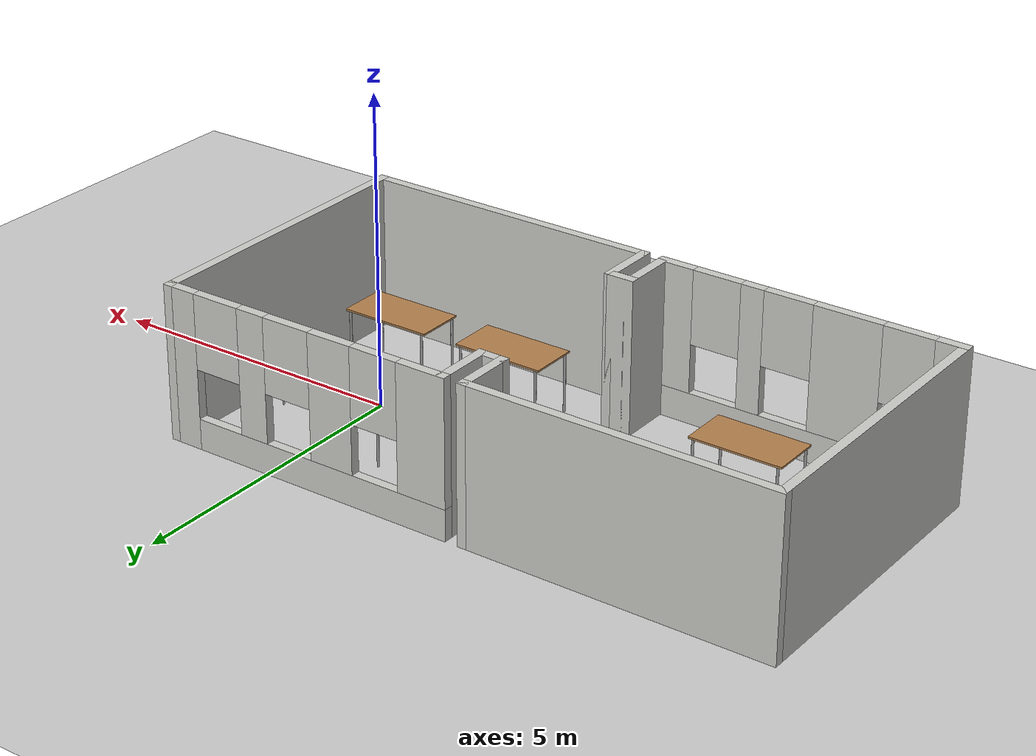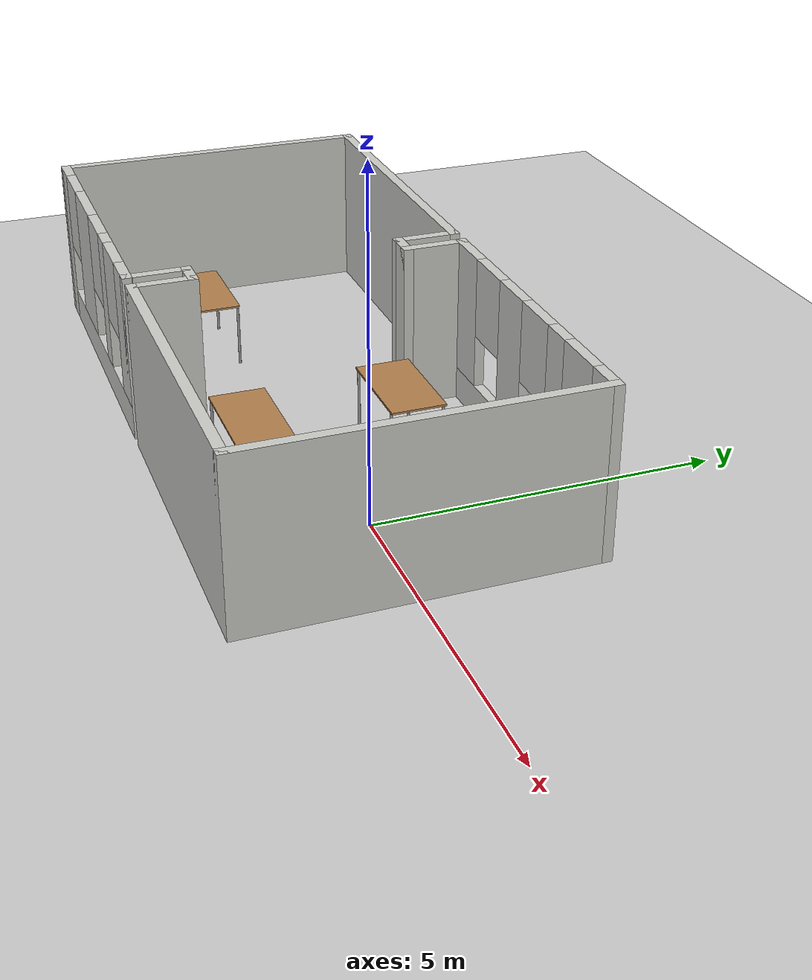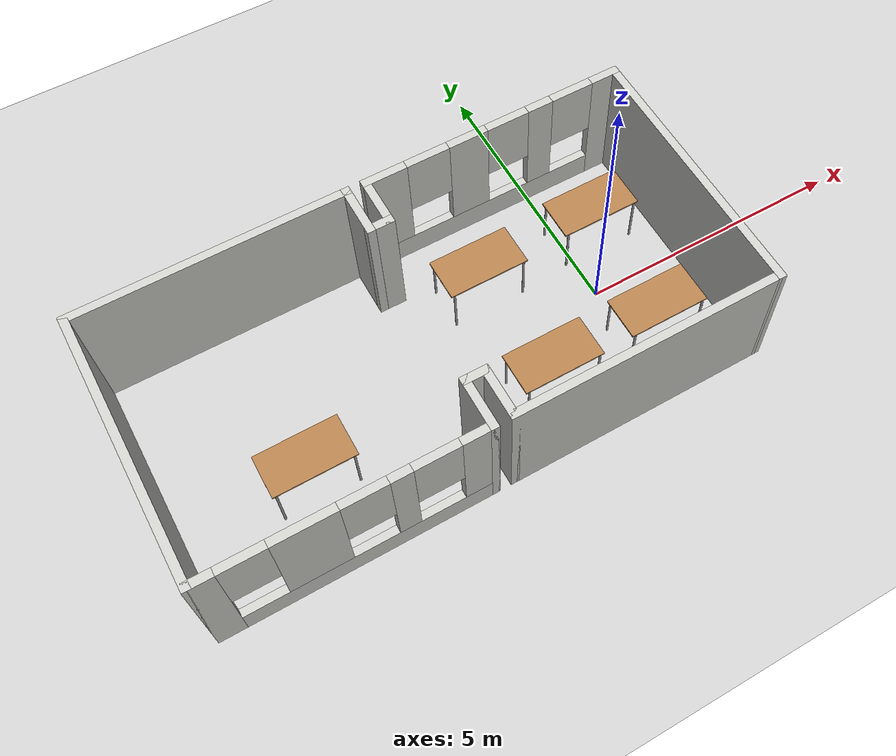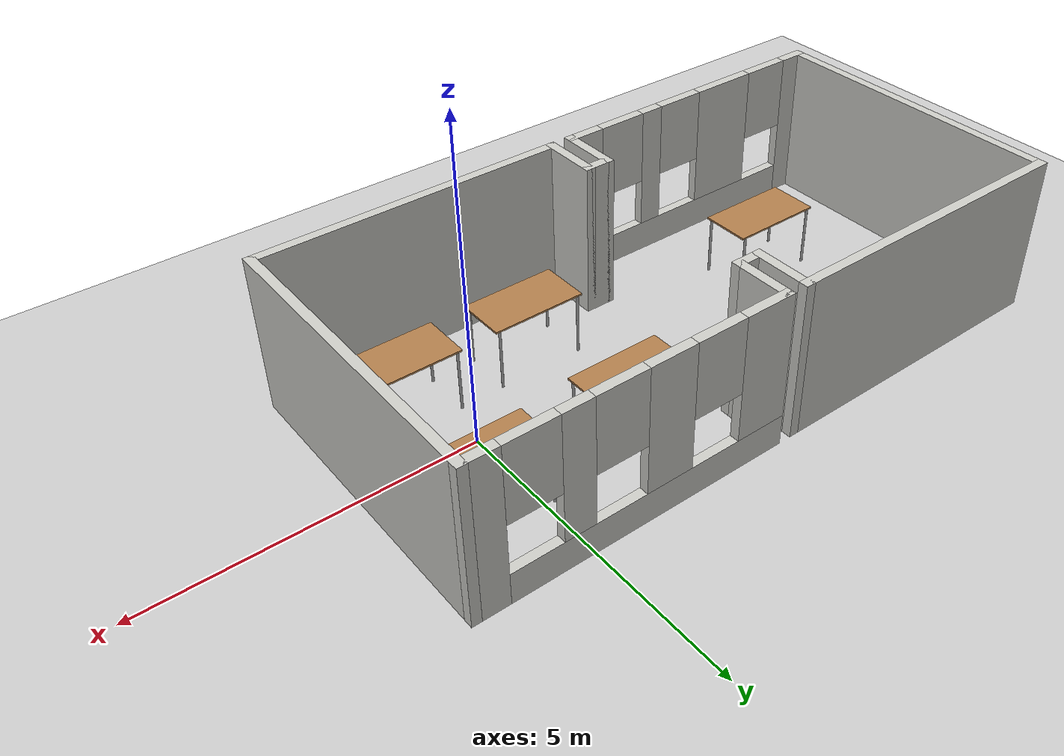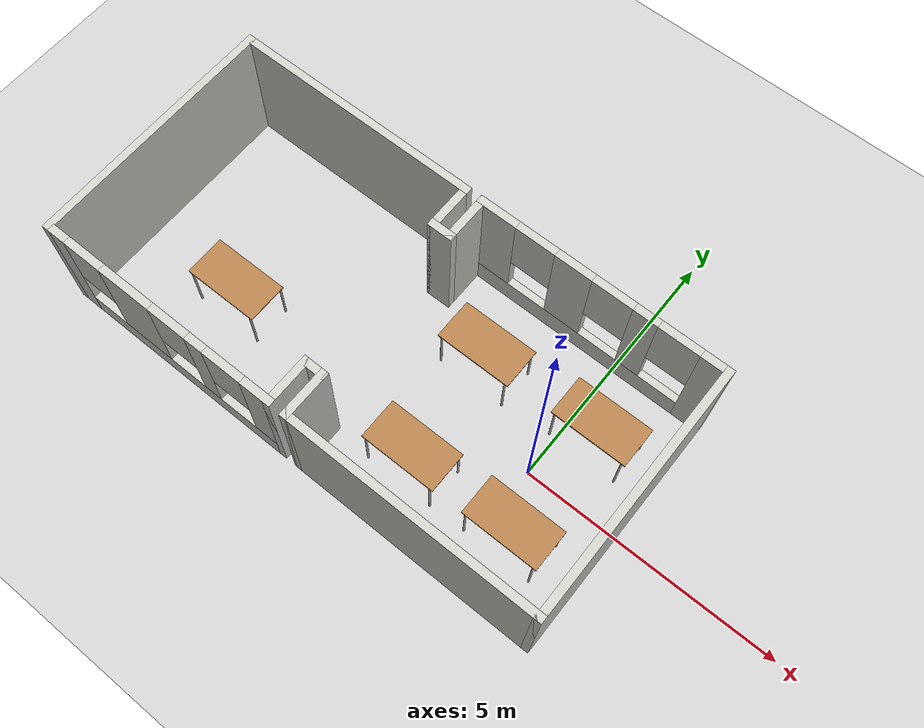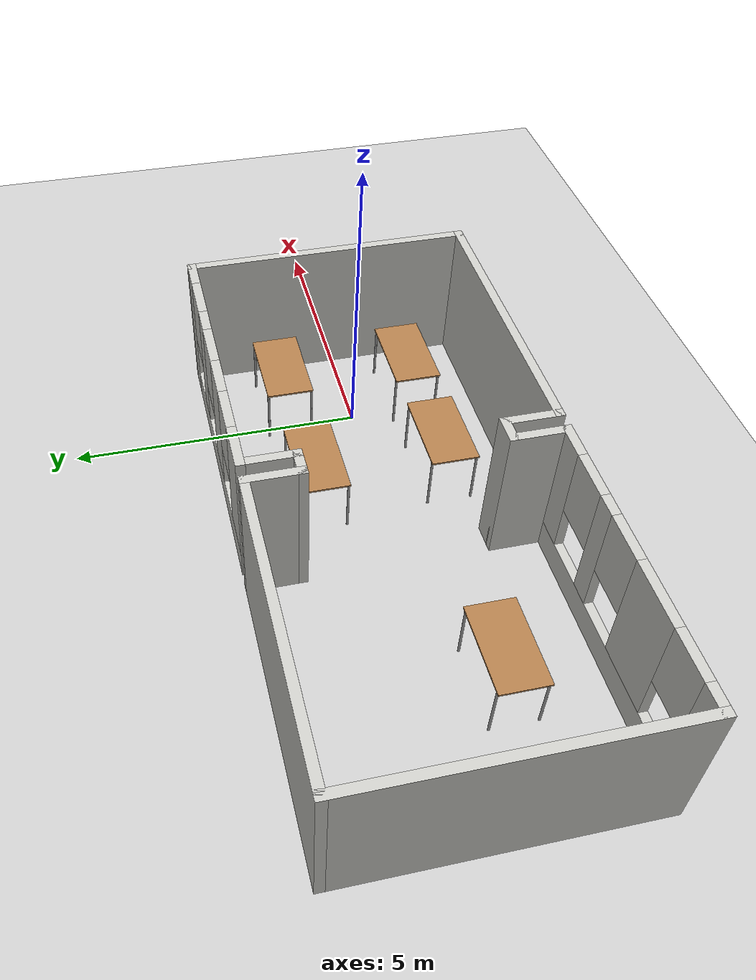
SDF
<sdf version="1.7">
 <world name="default">
  <light name="sun" type="directional">
   <pose>0 0 10 0 -0 0</pose>
   <diffuse>0.8 0.8 0.8 1</diffuse>
   <specular>0.2 0.2 0.2 1</specular>
   <attenuation>
    <range>1000</range>
    <constant>0.9</constant>
    <linear>0.01</linear>
    <quadratic>0.001</quadratic>
   </attenuation>
   <direction>-0.5 0.1 -0.9</direction>
   <spot><inner_angle>0</inner_angle><outer_angle>0</outer_angle><falloff>0</falloff></spot>
  </light>
  <model name="ground_plane">
   <static>1</static>
   <link name="link">
    <collision name="collision">
     <geometry><plane><normal>0 0 1</normal><size>100 100</size></plane></geometry>
     <surface><friction><ode><mu>100</mu><mu2>50</mu2></ode></friction></surface>
    </collision>
    <visual name="visual">
     <cast_shadows>0</cast_shadows>
     <geometry><plane><normal>0 0 1</normal><size>100 100</size></plane></geometry>
     <material>
      <script><uri>file://media/materials/scripts/gazebo.material</uri><name>Gazebo/Grey</name></script>
     </material>
    </visual>
   </link>
  </model>
  <gravity>0 0 -9.8</gravity>
  <magnetic_field>6e-06 2.3e-05 -4.2e-05</magnetic_field>
  <atmosphere type="adiabatic"/>
  <physics type="ode">
   <max_step_size>0.001</max_step_size>
   <real_time_factor>1</real_time_factor>
   <real_time_update_rate>1000</real_time_update_rate>
  </physics>
  <scene><ambient>0.4 0.4 0.4 1</ambient><background>0.7 0.7 0.7 1</background><shadows>1</shadows></scene>
  <spherical_coordinates>
   <surface_model>EARTH_WGS84</surface_model>
   <latitude_deg>0</latitude_deg>
   <longitude_deg>0</longitude_deg>
   <elevation>0</elevation>
   <heading_deg>0</heading_deg>
  </spherical_coordinates>
  <model name="building">
   <pose>-3.26867 0.091522 0 0 -0 0</pose>
   <link name="Wall_1">
    <collision name="Wall_1_Collision">
     <geometry><box><size>5 0.15 2.5</size></box></geometry>
     <pose>0 0 1.25 0 -0 0</pose>
    </collision>
    <visual name="Wall_1_Visual">
     <pose>0 0 1.25 0 -0 0</pose>
     <geometry><box><size>5 0.15 2.5</size></box></geometry>
     <material>
      <script><uri>file://media/materials/scripts/gazebo.material</uri><name>Gazebo/CeilingTiled</name></script>
      <ambient>1 1 1 1</ambient>
     </material>
     <meta><layer>0</layer></meta>
    </visual>
    <pose>-5.025 0 0 0 -0 -1.5708</pose>
   </link>
   <link name="Wall_10">
    <pose>2.6 2.425 0 0 -0 3.14159</pose>
    <visual name="Wall_10_Visual_0">
     <pose>-2.2175 0 1.25 0 -0 0</pose>
     <geometry><box><size>0.565 0.15 2.5</size></box></geometry>
     <material>
      <script><uri>file://media/materials/scripts/gazebo.material</uri><name>Gazebo/CeilingTiled</name></script>
      <ambient>1 1 1 1</ambient>
     </material>
     <meta><layer>0</layer></meta>
    </visual>
    <collision name="Wall_10_Collision_0">
     <geometry><box><size>0.565 0.15 2.5</size></box></geometry>
     <pose>-2.2175 0 1.25 0 -0 0</pose>
    </collision>
    <visual name="Wall_10_Visual_1">
     <pose>0.2825 0 0.25 0 -0 0</pose>
     <geometry><box><size>4.435 0.15 0.5</size></box></geometry>
     <material>
      <script><uri>file://media/materials/scripts/gazebo.material</uri><name>Gazebo/CeilingTiled</name></script>
      <ambient>1 1 1 1</ambient>
     </material>
     <meta><layer>0</layer></meta>
    </visual>
    <collision name="Wall_10_Collision_1">
     <geometry><box><size>4.435 0.15 0.5</size></box></geometry>
     <pose>0.2825 0 0.25 0 -0 0</pose>
    </collision>
    <visual name="Wall_10_Visual_2">
     <pose>-0.895 0 1.5 0 -0 0</pose>
     <geometry><box><size>0.48 0.15 2</size></box></geometry>
     <material>
      <script><uri>file://media/materials/scripts/gazebo.material</uri><name>Gazebo/CeilingTiled</name></script>
      <ambient>1 1 1 1</ambient>
     </material>
     <meta><layer>0</layer></meta>
    </visual>
    <collision name="Wall_10_Collision_2">
     <geometry><box><size>0.48 0.15 2</size></box></geometry>
     <pose>-0.895 0 1.5 0 -0 0</pose>
    </collision>
    <visual name="Wall_10_Visual_3">
     <pose>0.515 0 1.5 0 -0 0</pose>
     <geometry><box><size>0.74 0.15 2</size></box></geometry>
     <material>
      <script><uri>file://media/materials/scripts/gazebo.material</uri><name>Gazebo/CeilingTiled</name></script>
      <ambient>1 1 1 1</ambient>
     </material>
     <meta><layer>0</layer></meta>
    </visual>
    <collision name="Wall_10_Collision_3">
     <geometry><box><size>0.74 0.15 2</size></box></geometry>
     <pose>0.515 0 1.5 0 -0 0</pose>
    </collision>
    <visual name="Wall_10_Visual_4">
     <pose>2.0925 0 1.5 0 -0 0</pose>
     <geometry><box><size>0.815 0.15 2</size></box></geometry>
     <material>
      <script><uri>file://media/materials/scripts/gazebo.material</uri><name>Gazebo/CeilingTiled</name></script>
      <ambient>1 1 1 1</ambient>
     </material>
     <meta><layer>0</layer></meta>
    </visual>
    <collision name="Wall_10_Collision_4">
     <geometry><box><size>0.815 0.15 2</size></box></geometry>
     <pose>2.0925 0 1.5 0 -0 0</pose>
    </collision>
    <visual name="Wall_10_Visual_5">
     <pose>-1.535 0 1.9 0 -0 0</pose>
     <geometry><box><size>0.8 0.15 1.2</size></box></geometry>
     <material>
      <script><uri>file://media/materials/scripts/gazebo.material</uri><name>Gazebo/CeilingTiled</name></script>
      <ambient>1 1 1 1</ambient>
     </material>
     <meta><layer>0</layer></meta>
    </visual>
    <collision name="Wall_10_Collision_5">
     <geometry><box><size>0.8 0.15 1.2</size></box></geometry>
     <pose>-1.535 0 1.9 0 -0 0</pose>
    </collision>
    <visual name="Wall_10_Visual_6">
     <pose>-0.255 0 1.9 0 -0 0</pose>
     <geometry><box><size>0.8 0.15 1.2</size></box></geometry>
     <material>
      <script><uri>file://media/materials/scripts/gazebo.material</uri><name>Gazebo/CeilingTiled</name></script>
      <ambient>1 1 1 1</ambient>
     </material>
     <meta><layer>0</layer></meta>
    </visual>
    <collision name="Wall_10_Collision_6">
     <geometry><box><size>0.8 0.15 1.2</size></box></geometry>
     <pose>-0.255 0 1.9 0 -0 0</pose>
    </collision>
    <visual name="Wall_10_Visual_7">
     <pose>1.285 0 1.9 0 -0 0</pose>
     <geometry><box><size>0.8 0.15 1.2</size></box></geometry>
     <material>
      <script><uri>file://media/materials/scripts/gazebo.material</uri><name>Gazebo/CeilingTiled</name></script>
      <ambient>1 1 1 1</ambient>
     </material>
     <meta><layer>0</layer></meta>
    </visual>
    <collision name="Wall_10_Collision_7">
     <geometry><box><size>0.8 0.15 1.2</size></box></geometry>
     <pose>1.285 0 1.9 0 -0 0</pose>
    </collision>
   </link>
   <link name="Wall_11">
    <collision name="Wall_11_Collision">
     <geometry><box><size>1 0.15 2.5</size></box></geometry>
     <pose>0 0 1.25 0 -0 0</pose>
    </collision>
    <visual name="Wall_11_Visual">
     <pose>0 0 1.25 0 -0 0</pose>
     <geometry><box><size>1 0.15 2.5</size></box></geometry>
     <material>
      <script><uri>file://media/materials/scripts/gazebo.material</uri><name>Gazebo/CeilingTiled</name></script>
      <ambient>1 1 1 1</ambient>
     </material>
     <meta><layer>0</layer></meta>
    </visual>
    <pose>0.175 2 0 0 -0 -1.5708</pose>
   </link>
   <link name="Wall_12">
    <collision name="Wall_12_Collision">
     <geometry><box><size>0.5 0.15 2.5</size></box></geometry>
     <pose>0 0 1.25 0 -0 0</pose>
    </collision>
    <visual name="Wall_12_Visual">
     <pose>0 0 1.25 0 -0 0</pose>
     <geometry><box><size>0.5 0.15 2.5</size></box></geometry>
     <material>
      <script><uri>file://media/materials/scripts/gazebo.material</uri><name>Gazebo/CeilingTiled</name></script>
      <ambient>1 1 1 1</ambient>
     </material>
     <meta><layer>0</layer></meta>
    </visual>
    <pose>0 1.575 0 0 -0 3.14159</pose>
   </link>
   <link name="Wall_13">
    <collision name="Wall_13_Collision">
     <geometry><box><size>1 0.15 2.5</size></box></geometry>
     <pose>0 0 1.25 0 -0 0</pose>
    </collision>
    <visual name="Wall_13_Visual">
     <pose>0 0 1.25 0 -0 0</pose>
     <geometry><box><size>1 0.15 2.5</size></box></geometry>
     <material>
      <script><uri>file://media/materials/scripts/gazebo.material</uri><name>Gazebo/CeilingTiled</name></script>
      <ambient>1 1 1 1</ambient>
     </material>
     <meta><layer>0</layer></meta>
    </visual>
    <pose>-0.175 2 0 0 -0 1.5708</pose>
   </link>
   <link name="Wall_14">
    <collision name="Wall_14_Collision">
     <geometry><box><size>5 0.15 2.5</size></box></geometry>
     <pose>0 0 1.25 0 -0 0</pose>
    </collision>
    <visual name="Wall_14_Visual">
     <pose>0 0 1.25 0 -0 0</pose>
     <geometry><box><size>5 0.15 2.5</size></box></geometry>
     <material>
      <script><uri>file://media/materials/scripts/gazebo.material</uri><name>Gazebo/CeilingTiled</name></script>
      <ambient>1 1 1 1</ambient>
     </material>
     <meta><layer>0</layer></meta>
    </visual>
    <pose>-2.6 2.425 0 0 -0 3.14159</pose>
   </link>
   <link name="Wall_3">
    <pose>-2.6 -2.425 0 0 -0 0</pose>
    <visual name="Wall_3_Visual_0">
     <pose>-2.2525 0 1.25 0 -0 0</pose>
     <geometry><box><size>0.495 0.15 2.5</size></box></geometry>
     <material>
      <script><uri>file://media/materials/scripts/gazebo.material</uri><name>Gazebo/CeilingTiled</name></script>
      <ambient>1 1 1 1</ambient>
     </material>
     <meta><layer>0</layer></meta>
    </visual>
    <collision name="Wall_3_Collision_0">
     <geometry><box><size>0.495 0.15 2.5</size></box></geometry>
     <pose>-2.2525 0 1.25 0 -0 0</pose>
    </collision>
    <visual name="Wall_3_Visual_1">
     <pose>0.2475 0 0.25 0 -0 0</pose>
     <geometry><box><size>4.505 0.15 0.5</size></box></geometry>
     <material>
      <script><uri>file://media/materials/scripts/gazebo.material</uri><name>Gazebo/CeilingTiled</name></script>
      <ambient>1 1 1 1</ambient>
     </material>
     <meta><layer>0</layer></meta>
    </visual>
    <collision name="Wall_3_Collision_1">
     <geometry><box><size>4.505 0.15 0.5</size></box></geometry>
     <pose>0.2475 0 0.25 0 -0 0</pose>
    </collision>
    <visual name="Wall_3_Visual_2">
     <pose>-0.655 0 1.5 0 -0 0</pose>
     <geometry><box><size>1.1 0.15 2</size></box></geometry>
     <material>
      <script><uri>file://media/materials/scripts/gazebo.material</uri><name>Gazebo/CeilingTiled</name></script>
      <ambient>1 1 1 1</ambient>
     </material>
     <meta><layer>0</layer></meta>
    </visual>
    <collision name="Wall_3_Collision_2">
     <geometry><box><size>1.1 0.15 2</size></box></geometry>
     <pose>-0.655 0 1.5 0 -0 0</pose>
    </collision>
    <visual name="Wall_3_Visual_3">
     <pose>0.885 0 1.5 0 -0 0</pose>
     <geometry><box><size>0.38 0.15 2</size></box></geometry>
     <material>
      <script><uri>file://media/materials/scripts/gazebo.material</uri><name>Gazebo/CeilingTiled</name></script>
      <ambient>1 1 1 1</ambient>
     </material>
     <meta><layer>0</layer></meta>
    </visual>
    <collision name="Wall_3_Collision_3">
     <geometry><box><size>0.38 0.15 2</size></box></geometry>
     <pose>0.885 0 1.5 0 -0 0</pose>
    </collision>
    <visual name="Wall_3_Visual_4">
     <pose>2.1875 0 1.5 0 -0 0</pose>
     <geometry><box><size>0.625 0.15 2</size></box></geometry>
     <material>
      <script><uri>file://media/materials/scripts/gazebo.material</uri><name>Gazebo/CeilingTiled</name></script>
      <ambient>1 1 1 1</ambient>
     </material>
     <meta><layer>0</layer></meta>
    </visual>
    <collision name="Wall_3_Collision_4">
     <geometry><box><size>0.625 0.15 2</size></box></geometry>
     <pose>2.1875 0 1.5 0 -0 0</pose>
    </collision>
    <visual name="Wall_3_Visual_5">
     <pose>-1.605 0 1.9 0 -0 0</pose>
     <geometry><box><size>0.8 0.15 1.2</size></box></geometry>
     <material>
      <script><uri>file://media/materials/scripts/gazebo.material</uri><name>Gazebo/CeilingTiled</name></script>
      <ambient>1 1 1 1</ambient>
     </material>
     <meta><layer>0</layer></meta>
    </visual>
    <collision name="Wall_3_Collision_5">
     <geometry><box><size>0.8 0.15 1.2</size></box></geometry>
     <pose>-1.605 0 1.9 0 -0 0</pose>
    </collision>
    <visual name="Wall_3_Visual_6">
     <pose>0.295 0 1.9 0 -0 0</pose>
     <geometry><box><size>0.8 0.15 1.2</size></box></geometry>
     <material>
      <script><uri>file://media/materials/scripts/gazebo.material</uri><name>Gazebo/CeilingTiled</name></script>
      <ambient>1 1 1 1</ambient>
     </material>
     <meta><layer>0</layer></meta>
    </visual>
    <collision name="Wall_3_Collision_6">
     <geometry><box><size>0.8 0.15 1.2</size></box></geometry>
     <pose>0.295 0 1.9 0 -0 0</pose>
    </collision>
    <visual name="Wall_3_Visual_7">
     <pose>1.475 0 1.9 0 -0 0</pose>
     <geometry><box><size>0.8 0.15 1.2</size></box></geometry>
     <material>
      <script><uri>file://media/materials/scripts/gazebo.material</uri><name>Gazebo/CeilingTiled</name></script>
      <ambient>1 1 1 1</ambient>
     </material>
     <meta><layer>0</layer></meta>
    </visual>
    <collision name="Wall_3_Collision_7">
     <geometry><box><size>0.8 0.15 1.2</size></box></geometry>
     <pose>1.475 0 1.9 0 -0 0</pose>
    </collision>
   </link>
   <link name="Wall_4">
    <collision name="Wall_4_Collision">
     <geometry><box><size>1 0.15 2.5</size></box></geometry>
     <pose>0 0 1.25 0 -0 0</pose>
    </collision>
    <visual name="Wall_4_Visual">
     <pose>0 0 1.25 0 -0 0</pose>
     <geometry><box><size>1 0.15 2.5</size></box></geometry>
     <material>
      <script><uri>file://media/materials/scripts/gazebo.material</uri><name>Gazebo/CeilingTiled</name></script>
      <ambient>1 1 1 1</ambient>
     </material>
     <meta><layer>0</layer></meta>
    </visual>
    <pose>-0.175 -2 0 0 -0 1.5708</pose>
   </link>
   <link name="Wall_5">
    <collision name="Wall_5_Collision">
     <geometry><box><size>0.5 0.15 2.5</size></box></geometry>
     <pose>0 0 1.25 0 -0 0</pose>
    </collision>
    <visual name="Wall_5_Visual">
     <pose>0 0 1.25 0 -0 0</pose>
     <geometry><box><size>0.5 0.15 2.5</size></box></geometry>
     <material>
      <script><uri>file://media/materials/scripts/gazebo.material</uri><name>Gazebo/CeilingTiled</name></script>
      <ambient>1 1 1 1</ambient>
     </material>
     <meta><layer>0</layer></meta>
    </visual>
    <pose>0 -1.575 0 0 -0 0</pose>
   </link>
   <link name="Wall_6">
    <collision name="Wall_6_Collision">
     <geometry><box><size>1 0.15 2.5</size></box></geometry>
     <pose>0 0 1.25 0 -0 0</pose>
    </collision>
    <visual name="Wall_6_Visual">
     <pose>0 0 1.25 0 -0 0</pose>
     <geometry><box><size>1 0.15 2.5</size></box></geometry>
     <material>
      <script><uri>file://media/materials/scripts/gazebo.material</uri><name>Gazebo/CeilingTiled</name></script>
      <ambient>1 1 1 1</ambient>
     </material>
     <meta><layer>0</layer></meta>
    </visual>
    <pose>0.175 -2 0 0 -0 -1.5708</pose>
   </link>
   <link name="Wall_7">
    <collision name="Wall_7_Collision">
     <geometry><box><size>5 0.15 2.5</size></box></geometry>
     <pose>0 0 1.25 0 -0 0</pose>
    </collision>
    <visual name="Wall_7_Visual">
     <pose>0 0 1.25 0 -0 0</pose>
     <geometry><box><size>5 0.15 2.5</size></box></geometry>
     <material>
      <script><uri>file://media/materials/scripts/gazebo.material</uri><name>Gazebo/CeilingTiled</name></script>
      <ambient>1 1 1 1</ambient>
     </material>
     <meta><layer>0</layer></meta>
    </visual>
    <pose>2.6 -2.425 0 0 -0 0</pose>
   </link>
   <link name="Wall_9">
    <collision name="Wall_9_Collision">
     <geometry><box><size>5 0.15 2.5</size></box></geometry>
     <pose>0 0 1.25 0 -0 0</pose>
    </collision>
    <visual name="Wall_9_Visual">
     <pose>0 0 1.25 0 -0 0</pose>
     <geometry><box><size>5 0.15 2.5</size></box></geometry>
     <material>
      <script><uri>file://media/materials/scripts/gazebo.material</uri><name>Gazebo/CeilingTiled</name></script>
      <ambient>1 1 1 1</ambient>
     </material>
     <meta><layer>0</layer></meta>
    </visual>
    <pose>5.025 0 0 0 -0 1.5708</pose>
   </link>
   <static>1</static>
  </model>
  <model name="table">
   <static>1</static>
   <link name="link">
    <collision name="surface">
     <pose>0 0 1 0 -0 0</pose>
     <geometry><box><size>1.5 0.8 0.03</size></box></geometry>
     <surface><friction><ode><mu>0.6</mu><mu2>0.6</mu2></ode></friction></surface>
    </collision>
    <visual name="visual1">
     <pose>0 0 1 0 -0 0</pose>
     <geometry><box><size>1.5 0.8 0.03</size></box></geometry>
     <material>
      <script><uri>file://media/materials/scripts/gazebo.material</uri><name>Gazebo/Wood</name></script>
     </material>
    </visual>
    <collision name="front_left_leg">
     <pose>0.68 0.38 0.5 0 -0 0</pose>
     <geometry><cylinder><radius>0.02</radius><length>1</length></cylinder></geometry>
    </collision>
    <visual name="front_left_leg">
     <pose>0.68 0.38 0.5 0 -0 0</pose>
     <geometry><cylinder><radius>0.02</radius><length>1</length></cylinder></geometry>
     <material>
      <script><uri>file://media/materials/scripts/gazebo.material</uri><name>Gazebo/Grey</name></script>
     </material>
    </visual>
    <collision name="front_right_leg">
     <pose>0.68 -0.38 0.5 0 -0 0</pose>
     <geometry><cylinder><radius>0.02</radius><length>1</length></cylinder></geometry>
    </collision>
    <visual name="front_right_leg">
     <pose>0.68 -0.38 0.5 0 -0 0</pose>
     <geometry><cylinder><radius>0.02</radius><length>1</length></cylinder></geometry>
     <material>
      <script><uri>file://media/materials/scripts/gazebo.material</uri><name>Gazebo/Grey</name></script>
     </material>
    </visual>
    <collision name="back_right_leg">
     <pose>-0.68 -0.38 0.5 0 -0 0</pose>
     <geometry><cylinder><radius>0.02</radius><length>1</length></cylinder></geometry>
    </collision>
    <visual name="back_right_leg">
     <pose>-0.68 -0.38 0.5 0 -0 0</pose>
     <geometry><cylinder><radius>0.02</radius><length>1</length></cylinder></geometry>
     <material>
      <script><uri>file://media/materials/scripts/gazebo.material</uri><name>Gazebo/Grey</name></script>
     </material>
    </visual>
    <collision name="back_left_leg">
     <pose>-0.68 0.38 0.5 0 -0 0</pose>
     <geometry><cylinder><radius>0.02</radius><length>1</length></cylinder></geometry>
    </collision>
    <visual name="back_left_leg">
     <pose>-0.68 0.38 0.5 0 -0 0</pose>
     <geometry><cylinder><radius>0.02</radius><length>1</length></cylinder></geometry>
     <material>
      <script><uri>file://media/materials/scripts/gazebo.material</uri><name>Gazebo/Grey</name></script>
     </material>
    </visual>
   </link>
   <pose>-1.61988 -1.11993 0 0 -0 0</pose>
  </model>
  <model name="table_0">
   <static>1</static>
   <link name="link">
    <collision name="surface">
     <pose>0 0 1 0 -0 0</pose>
     <geometry><box><size>1.5 0.8 0.03</size></box></geometry>
     <surface><friction><ode><mu>0.6</mu><mu2>0.6</mu2></ode></friction></surface>
    </collision>
    <visual name="visual1">
     <pose>0 0 1 0 -0 0</pose>
     <geometry><box><size>1.5 0.8 0.03</size></box></geometry>
     <material>
      <script><uri>file://media/materials/scripts/gazebo.material</uri><name>Gazebo/Wood</name></script>
     </material>
    </visual>
    <collision name="front_left_leg">
     <pose>0.68 0.38 0.5 0 -0 0</pose>
     <geometry><cylinder><radius>0.02</radius><length>1</length></cylinder></geometry>
    </collision>
    <visual name="front_left_leg">
     <pose>0.68 0.38 0.5 0 -0 0</pose>
     <geometry><cylinder><radius>0.02</radius><length>1</length></cylinder></geometry>
     <material>
      <script><uri>file://media/materials/scripts/gazebo.material</uri><name>Gazebo/Grey</name></script>
     </material>
    </visual>
    <collision name="front_right_leg">
     <pose>0.68 -0.38 0.5 0 -0 0</pose>
     <geometry><cylinder><radius>0.02</radius><length>1</length></cylinder></geometry>
    </collision>
    <visual name="front_right_leg">
     <pose>0.68 -0.38 0.5 0 -0 0</pose>
     <geometry><cylinder><radius>0.02</radius><length>1</length></cylinder></geometry>
     <material>
      <script><uri>file://media/materials/scripts/gazebo.material</uri><name>Gazebo/Grey</name></script>
     </material>
    </visual>
    <collision name="back_right_leg">
     <pose>-0.68 -0.38 0.5 0 -0 0</pose>
     <geometry><cylinder><radius>0.02</radius><length>1</length></cylinder></geometry>
    </collision>
    <visual name="back_right_leg">
     <pose>-0.68 -0.38 0.5 0 -0 0</pose>
     <geometry><cylinder><radius>0.02</radius><length>1</length></cylinder></geometry>
     <material>
      <script><uri>file://media/materials/scripts/gazebo.material</uri><name>Gazebo/Grey</name></script>
     </material>
    </visual>
    <collision name="back_left_leg">
     <pose>-0.68 0.38 0.5 0 -0 0</pose>
     <geometry><cylinder><radius>0.02</radius><length>1</length></cylinder></geometry>
    </collision>
    <visual name="back_left_leg">
     <pose>-0.68 0.38 0.5 0 -0 0</pose>
     <geometry><cylinder><radius>0.02</radius><length>1</length></cylinder></geometry>
     <material>
      <script><uri>file://media/materials/scripts/gazebo.material</uri><name>Gazebo/Grey</name></script>
     </material>
    </visual>
   </link>
   <pose>-1.79417 1.08445 0 0 -0 0</pose>
  </model>
  <model name="table_1">
   <static>1</static>
   <link name="link">
    <collision name="surface">
     <pose>0 0 1 0 -0 0</pose>
     <geometry><box><size>1.5 0.8 0.03</size></box></geometry>
     <surface><friction><ode><mu>0.6</mu><mu2>0.6</mu2></ode></friction></surface>
    </collision>
    <visual name="visual1">
     <pose>0 0 1 0 -0 0</pose>
     <geometry><box><size>1.5 0.8 0.03</size></box></geometry>
     <material>
      <script><uri>file://media/materials/scripts/gazebo.material</uri><name>Gazebo/Wood</name></script>
     </material>
    </visual>
    <collision name="front_left_leg">
     <pose>0.68 0.38 0.5 0 -0 0</pose>
     <geometry><cylinder><radius>0.02</radius><length>1</length></cylinder></geometry>
    </collision>
    <visual name="front_left_leg">
     <pose>0.68 0.38 0.5 0 -0 0</pose>
     <geometry><cylinder><radius>0.02</radius><length>1</length></cylinder></geometry>
     <material>
      <script><uri>file://media/materials/scripts/gazebo.material</uri><name>Gazebo/Grey</name></script>
     </material>
    </visual>
    <collision name="front_right_leg">
     <pose>0.68 -0.38 0.5 0 -0 0</pose>
     <geometry><cylinder><radius>0.02</radius><length>1</length></cylinder></geometry>
    </collision>
    <visual name="front_right_leg">
     <pose>0.68 -0.38 0.5 0 -0 0</pose>
     <geometry><cylinder><radius>0.02</radius><length>1</length></cylinder></geometry>
     <material>
      <script><uri>file://media/materials/scripts/gazebo.material</uri><name>Gazebo/Grey</name></script>
     </material>
    </visual>
    <collision name="back_right_leg">
     <pose>-0.68 -0.38 0.5 0 -0 0</pose>
     <geometry><cylinder><radius>0.02</radius><length>1</length></cylinder></geometry>
    </collision>
    <visual name="back_right_leg">
     <pose>-0.68 -0.38 0.5 0 -0 0</pose>
     <geometry><cylinder><radius>0.02</radius><length>1</length></cylinder></geometry>
     <material>
      <script><uri>file://media/materials/scripts/gazebo.material</uri><name>Gazebo/Grey</name></script>
     </material>
    </visual>
    <collision name="back_left_leg">
     <pose>-0.68 0.38 0.5 0 -0 0</pose>
     <geometry><cylinder><radius>0.02</radius><length>1</length></cylinder></geometry>
    </collision>
    <visual name="back_left_leg">
     <pose>-0.68 0.38 0.5 0 -0 0</pose>
     <geometry><cylinder><radius>0.02</radius><length>1</length></cylinder></geometry>
     <material>
      <script><uri>file://media/materials/scripts/gazebo.material</uri><name>Gazebo/Grey</name></script>
     </material>
    </visual>
   </link>
   <pose>0.454132 -1.09552 0 0 -0 0</pose>
  </model>
  <model name="table_2">
   <static>1</static>
   <link name="link">
    <collision name="surface">
     <pose>0 0 1 0 -0 0</pose>
     <geometry><box><size>1.5 0.8 0.03</size></box></geometry>
     <surface><friction><ode><mu>0.6</mu><mu2>0.6</mu2></ode></friction></surface>
    </collision>
    <visual name="visual1">
     <pose>0 0 1 0 -0 0</pose>
     <geometry><box><size>1.5 0.8 0.03</size></box></geometry>
     <material>
      <script><uri>file://media/materials/scripts/gazebo.material</uri><name>Gazebo/Wood</name></script>
     </material>
    </visual>
    <collision name="front_left_leg">
     <pose>0.68 0.38 0.5 0 -0 0</pose>
     <geometry><cylinder><radius>0.02</radius><length>1</length></cylinder></geometry>
    </collision>
    <visual name="front_left_leg">
     <pose>0.68 0.38 0.5 0 -0 0</pose>
     <geometry><cylinder><radius>0.02</radius><length>1</length></cylinder></geometry>
     <material>
      <script><uri>file://media/materials/scripts/gazebo.material</uri><name>Gazebo/Grey</name></script>
     </material>
    </visual>
    <collision name="front_right_leg">
     <pose>0.68 -0.38 0.5 0 -0 0</pose>
     <geometry><cylinder><radius>0.02</radius><length>1</length></cylinder></geometry>
    </collision>
    <visual name="front_right_leg">
     <pose>0.68 -0.38 0.5 0 -0 0</pose>
     <geometry><cylinder><radius>0.02</radius><length>1</length></cylinder></geometry>
     <material>
      <script><uri>file://media/materials/scripts/gazebo.material</uri><name>Gazebo/Grey</name></script>
     </material>
    </visual>
    <collision name="back_right_leg">
     <pose>-0.68 -0.38 0.5 0 -0 0</pose>
     <geometry><cylinder><radius>0.02</radius><length>1</length></cylinder></geometry>
    </collision>
    <visual name="back_right_leg">
     <pose>-0.68 -0.38 0.5 0 -0 0</pose>
     <geometry><cylinder><radius>0.02</radius><length>1</length></cylinder></geometry>
     <material>
      <script><uri>file://media/materials/scripts/gazebo.material</uri><name>Gazebo/Grey</name></script>
     </material>
    </visual>
    <collision name="back_left_leg">
     <pose>-0.68 0.38 0.5 0 -0 0</pose>
     <geometry><cylinder><radius>0.02</radius><length>1</length></cylinder></geometry>
    </collision>
    <visual name="back_left_leg">
     <pose>-0.68 0.38 0.5 0 -0 0</pose>
     <geometry><cylinder><radius>0.02</radius><length>1</length></cylinder></geometry>
     <material>
      <script><uri>file://media/materials/scripts/gazebo.material</uri><name>Gazebo/Grey</name></script>
     </material>
    </visual>
   </link>
   <pose>0.540438 1.18234 0 0 -0 0</pose>
  </model>
  <model name="table_3">
   <static>1</static>
   <link name="link">
    <collision name="surface">
     <pose>0 0 1 0 -0 0</pose>
     <geometry><box><size>1.5 0.8 0.03</size></box></geometry>
     <surface><friction><ode><mu>0.6</mu><mu2>0.6</mu2></ode></friction></surface>
    </collision>
    <visual name="visual1">
     <pose>0 0 1 0 -0 0</pose>
     <geometry><box><size>1.5 0.8 0.03</size></box></geometry>
     <material>
      <script><uri>file://media/materials/scripts/gazebo.material</uri><name>Gazebo/Wood</name></script>
     </material>
    </visual>
    <collision name="front_left_leg">
     <pose>0.68 0.38 0.5 0 -0 0</pose>
     <geometry><cylinder><radius>0.02</radius><length>1</length></cylinder></geometry>
    </collision>
    <visual name="front_left_leg">
     <pose>0.68 0.38 0.5 0 -0 0</pose>
     <geometry><cylinder><radius>0.02</radius><length>1</length></cylinder></geometry>
     <material>
      <script><uri>file://media/materials/scripts/gazebo.material</uri><name>Gazebo/Grey</name></script>
     </material>
    </visual>
    <collision name="front_right_leg">
     <pose>0.68 -0.38 0.5 0 -0 0</pose>
     <geometry><cylinder><radius>0.02</radius><length>1</length></cylinder></geometry>
    </collision>
    <visual name="front_right_leg">
     <pose>0.68 -0.38 0.5 0 -0 0</pose>
     <geometry><cylinder><radius>0.02</radius><length>1</length></cylinder></geometry>
     <material>
      <script><uri>file://media/materials/scripts/gazebo.material</uri><name>Gazebo/Grey</name></script>
     </material>
    </visual>
    <collision name="back_right_leg">
     <pose>-0.68 -0.38 0.5 0 -0 0</pose>
     <geometry><cylinder><radius>0.02</radius><length>1</length></cylinder></geometry>
    </collision>
    <visual name="back_right_leg">
     <pose>-0.68 -0.38 0.5 0 -0 0</pose>
     <geometry><cylinder><radius>0.02</radius><length>1</length></cylinder></geometry>
     <material>
      <script><uri>file://media/materials/scripts/gazebo.material</uri><name>Gazebo/Grey</name></script>
     </material>
    </visual>
    <collision name="back_left_leg">
     <pose>-0.68 0.38 0.5 0 -0 0</pose>
     <geometry><cylinder><radius>0.02</radius><length>1</length></cylinder></geometry>
    </collision>
    <visual name="back_left_leg">
     <pose>-0.68 0.38 0.5 0 -0 0</pose>
     <geometry><cylinder><radius>0.02</radius><length>1</length></cylinder></geometry>
     <material>
      <script><uri>file://media/materials/scripts/gazebo.material</uri><name>Gazebo/Grey</name></script>
     </material>
    </visual>
   </link>
   <pose>-5.94525 -0.708334 0 0 -0 0</pose>
  </model>
 </world>
</sdf>
